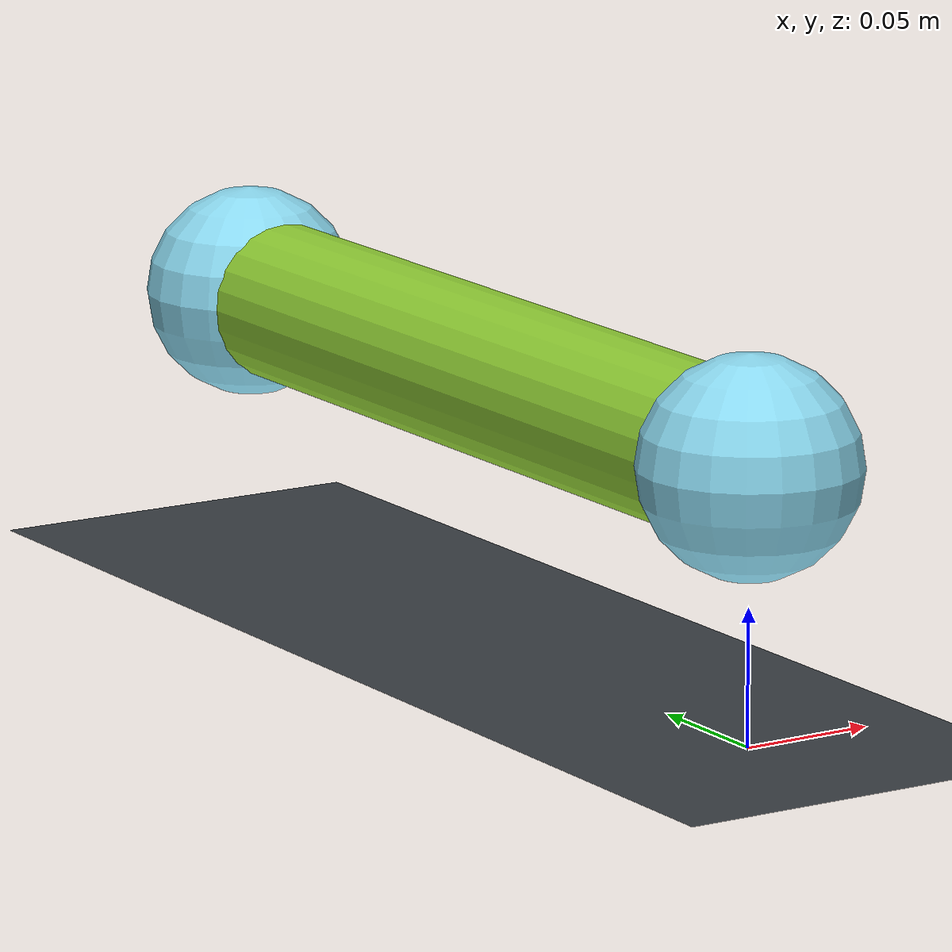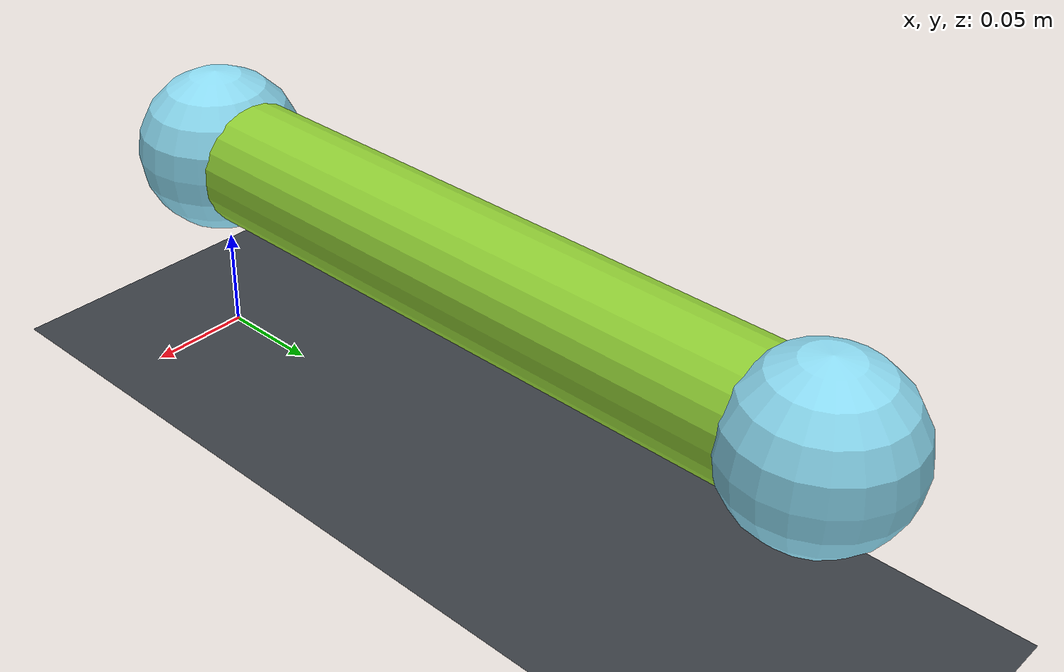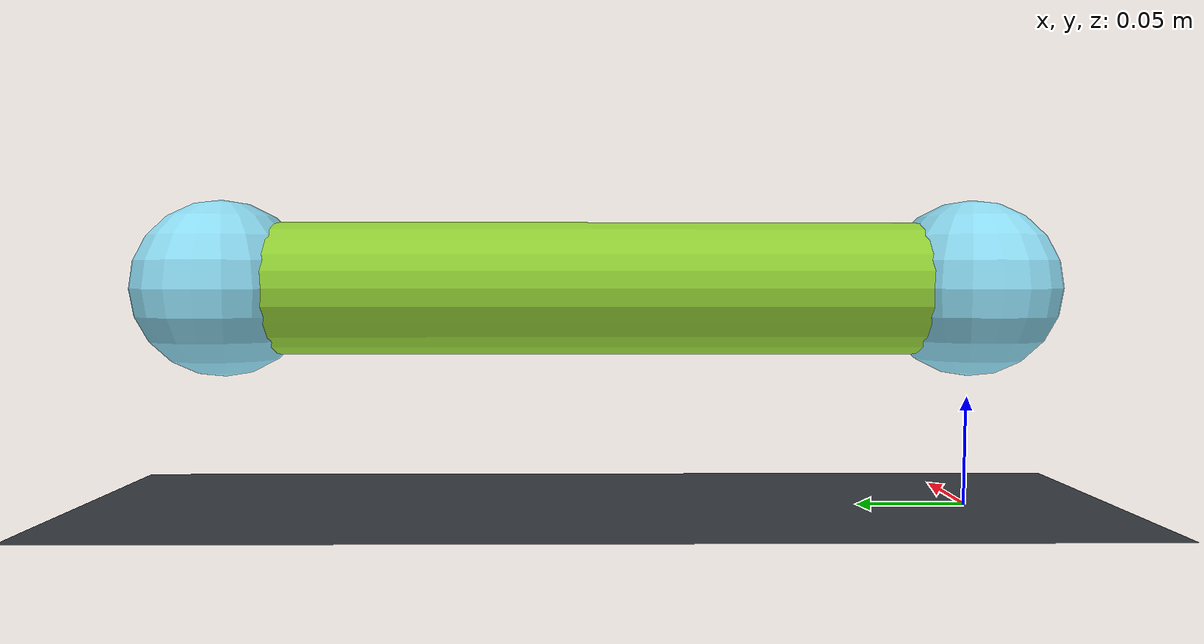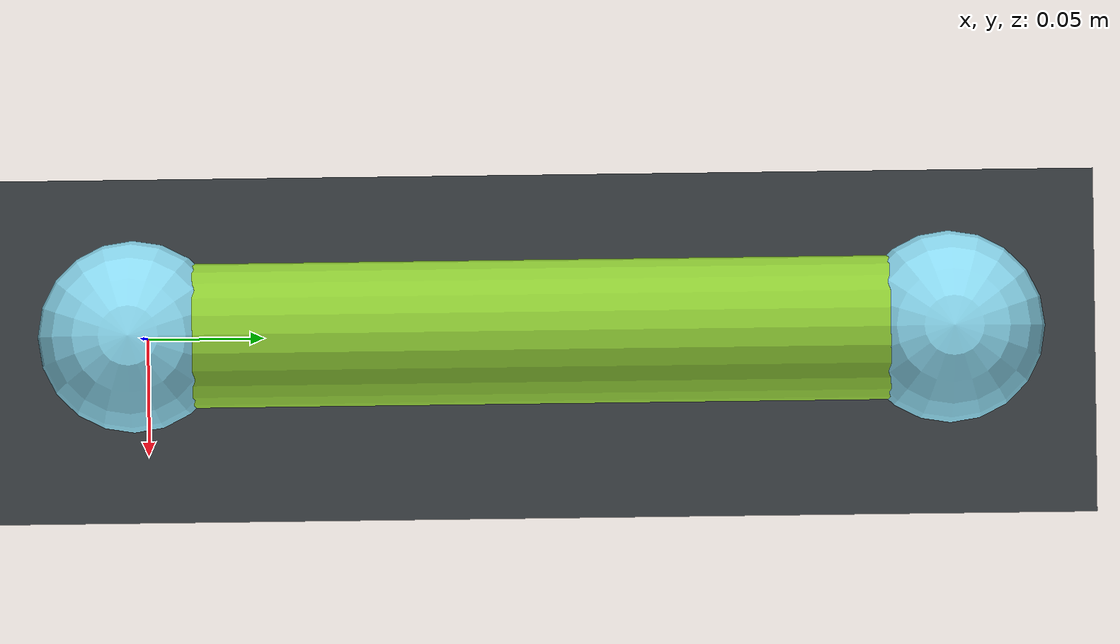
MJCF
<mujoco model="modular_assemblies_1limb">
  <compiler angle="degree"/>
  <option timestep="0.005" gravity="0 0 -9.81" iterations="70" integrator="implicitfast"/>
  <size njmax="100" nconmax="80"/>

  <default>
    <geom friction="1.0 0.08 0.02" solimp="0.95 0.99 0.001" solref="0.002 1"/>
    <site size="0.012" rgba="0.55 0.86 0.95 1"/>
  </default>

  <worldbody>
    <light directional="true" diffuse="0.9 0.9 0.9" specular="0.2 0.2 0.2" pos="0 2.0 1.2" dir="0 -1 -0.2"/>
    <geom name="ground" type="plane" size="4 4 0.1" rgba="0.22 0.24 0.26 1"/>

    <body name="limb0" pos="0 0 0.10">
      <joint type="free" damping="0.8"/>
      <geom name="limb0_geom" type="cylinder" fromto="0 0 0 0 0.34 0" size="0.03" density="750" rgba="0.56 0.80 0.20 1"/>
      <geom type="sphere" pos="0 0 0" size="0.04" density="750" rgba="0.55 0.86 0.95 1"/>
      <geom type="sphere" pos="0 0.34 0" size="0.04" density="750" rgba="0.55 0.86 0.95 1"/>
      <site name="limb0_child" pos="0 0 0"/>
      <site name="limb0_parent" pos="0 0.34 0"/>
    </body>
  </worldbody>
</mujoco>
